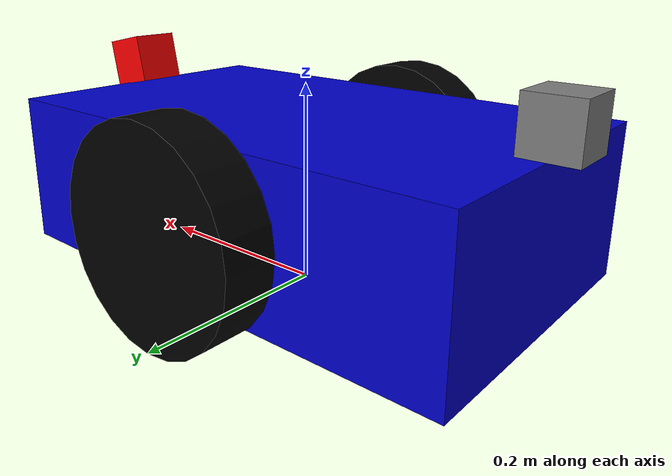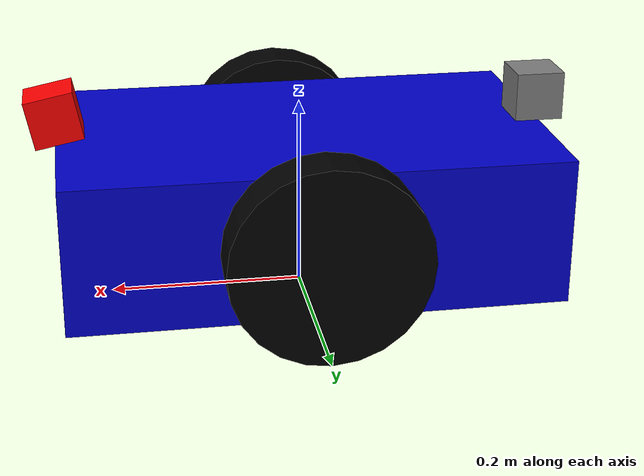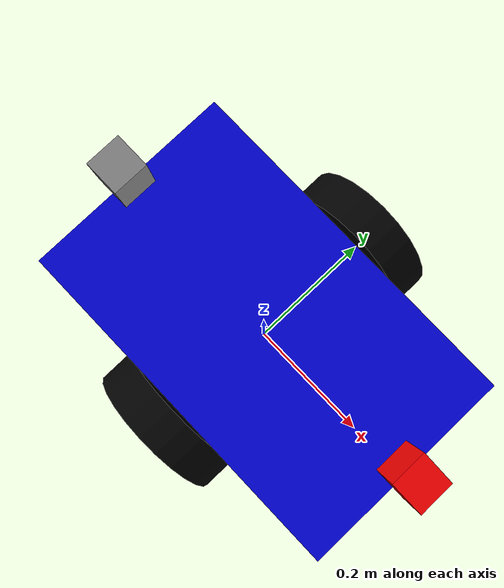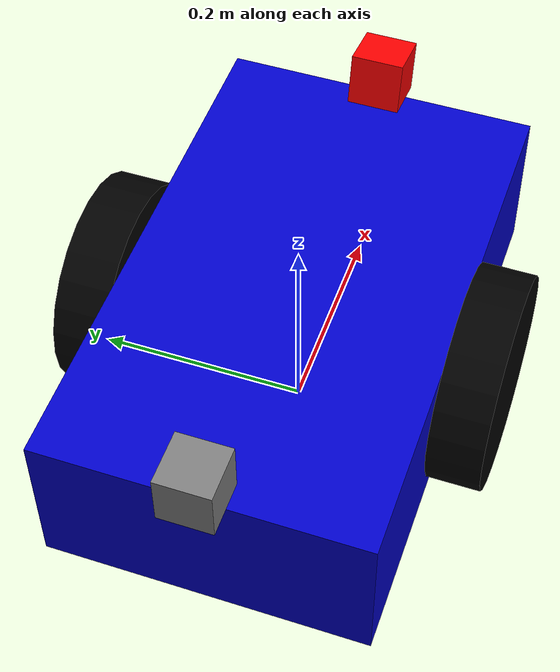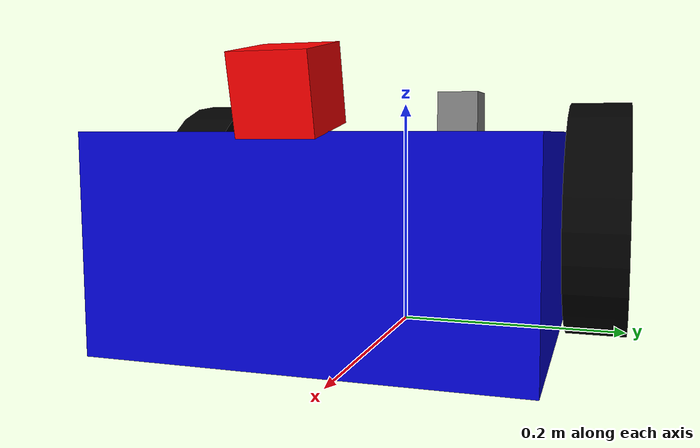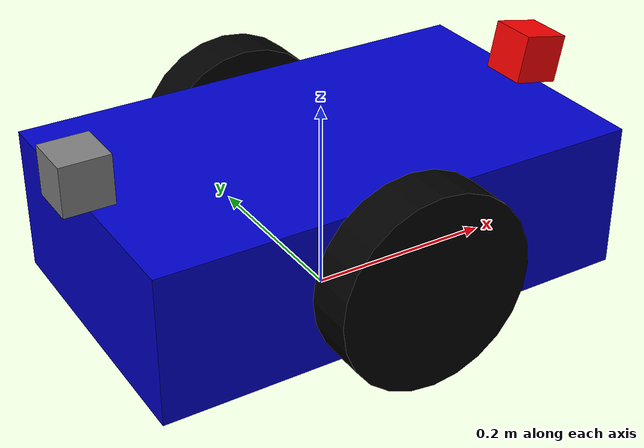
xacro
<?xml version="1.0"?>
<robot name="my_robot" xmlns:xacro="http://www.ros.org/wiki/xacro">

  <!-- Define constants -->
  <xacro:property name="chassis_length" value="0.5"/>
  <xacro:property name="chassis_width" value="0.3"/>
  <xacro:property name="chassis_height" value="0.15"/>
  <xacro:property name="wheel_radius" value="0.1"/>
  <xacro:property name="wheel_width" value="0.05"/>
  <xacro:property name="caster_radius" value="0.05"/>

  <!-- Base footprint (virtual link on ground) -->
  <link name="base_footprint"/>

  <!-- Base link (chassis) -->
  <link name="base_link">
    <visual>
      <geometry>
        <box size="${chassis_length} ${chassis_width} ${chassis_height}"/>
      </geometry>
      <material name="blue">
        <color rgba="0 0 0.8 1"/>
      </material>
    </visual>
    <collision>
      <geometry>
        <box size="${chassis_length} ${chassis_width} ${chassis_height}"/>
      </geometry>
    </collision>
    <inertial>
      <mass value="5.0"/>
      <origin xyz="0 0 0" rpy="0 0 0"/>
      <inertia ixx="0.0625" ixy="0.0" ixz="0.0" iyy="0.1104" iyz="0.0" izz="0.1354"/>
    </inertial>
  </link>

    <!-- Joint connecting base_footprint to base_link -->
  <joint name="base_footprint_to_base_link" type="fixed">
    <parent link="base_footprint"/>
    <child link="base_link"/>
    <origin xyz="0 0 ${wheel_radius}" rpy="0 0 0"/>
  </joint>

  <!-- Left Wheel -->
  <link name="left_wheel_link">
    <visual>
      <geometry>
        <cylinder radius="${wheel_radius}" length="${wheel_width}"/>
      </geometry>
      <material name="black">
        <color rgba="0 0 0 1"/>
      </material>
    </visual>
    <collision>
      <geometry>
        <cylinder radius="${wheel_radius}" length="${wheel_width}"/>
      </geometry>
    </collision>
    <inertial>
      <mass value="0.5"/>
      <inertia ixx="0.00104" ixy="0.0" ixz="0.0" iyy="0.00104" iyz="0.0" izz="0.00125"/>
    </inertial>
  </link>

  <joint name="left_wheel_joint" type="continuous">
    <parent link="base_link"/>
    <child link="left_wheel_link"/>
    <origin xyz="0 ${chassis_width/2 + wheel_width/2} 0" rpy="-1.5708 0 0"/>
    <axis xyz="0 0 1"/>
  </joint>

  <!-- Right Wheel -->
  <link name="right_wheel_link">
    <visual>
      <geometry>
        <cylinder radius="${wheel_radius}" length="${wheel_width}"/>
      </geometry>
      <material name="black">
        <color rgba="0 0 0 1"/>
      </material>
    </visual>
    <collision>
      <geometry>
        <cylinder radius="${wheel_radius}" length="${wheel_width}"/>
      </geometry>
    </collision>
    <inertial>
      <mass value="0.5"/>
      <inertia ixx="0.00104" ixy="0.0" ixz="0.0" iyy="0.00104" iyz="0.0" izz="0.00125"/>
    </inertial>
  </link>

  <joint name="right_wheel_joint" type="continuous">
    <parent link="base_link"/>
    <child link="right_wheel_link"/>
    <origin xyz="0 ${-chassis_width/2 - wheel_width/2} 0" rpy="-1.5708 0 0"/>
    <axis xyz="0 0 1"/>
  </joint>

  <!-- Caster Wheel -->

  <!-- Camera Link -->
  <link name="camera_link">
    <visual>
      <geometry>
        <box size="0.05 0.05 0.05"/>
      </geometry>
      <material name="red">
        <color rgba="1 0 0 1"/>
      </material>
    </visual>
    <collision>
      <geometry>
        <box size="0.05 0.05 0.05"/>
      </geometry>
    </collision>
    <inertial>
      <mass value="0.1"/>
      <origin xyz="0 0 0" rpy="0 0 0"/>
      <inertia ixx="0.00001" ixy="0.0" ixz="0.0" iyy="0.00001" iyz="0.0" izz="0.00001"/>
    </inertial>
  </link>

  <joint name="camera_joint" type="fixed">
    <parent link="base_link"/>
    <child link="camera_link"/>
    <origin xyz="${chassis_length/2} 0 ${chassis_height/2 + 0.025}" rpy="0 0.2 0"/>
  </joint>

  <!-- Counterweight link (balances camera mass) -->
  <link name="counterweight_link">
    <visual>
      <geometry>
        <box size="0.05 0.05 0.05"/>
      </geometry>
      <material name="grey">
        <color rgba="0.5 0.5 0.5 1"/>
      </material>
    </visual>
    <collision>
      <geometry>
        <box size="0.05 0.05 0.05"/>
      </geometry>
    </collision>
    <inertial>
      <mass value="0.1"/>
      <origin xyz="0 0 0" rpy="0 0 0"/>
      <inertia ixx="0.00001" ixy="0.0" ixz="0.0" iyy="0.00001" iyz="0.0" izz="0.00001"/>
    </inertial>
  </link>

  <joint name="counterweight_joint" type="fixed">
    <parent link="base_link"/>
    <child link="counterweight_link"/>
    <origin xyz="${-chassis_length/2} 0 ${chassis_height/2 + 0.025}" rpy="0 0 0"/>
  </joint>

  <!-- Gazebo Differential Drive Plugin -->
  <gazebo>
    <plugin filename="gz-sim-diff-drive-system" name="gz::sim::systems::DiffDrive">
      <left_joint>left_wheel_joint</left_joint>
      <right_joint>right_wheel_joint</right_joint>
      <wheel_separation>${chassis_width + wheel_width}</wheel_separation>
      <wheel_radius>${wheel_radius}</wheel_radius>
      <odom_publish_frequency>50</odom_publish_frequency>
      <topic>/cmd_vel</topic>          <!-- Listens to /cmd_vel for movement -->
      <odom_topic>/odom</odom_topic>   <!-- Publishes odometry messages -->
      <tf_topic>/tf</tf_topic>         <!-- Publishes the odom->base_footprint transform -->
      <frame_id>odom</frame_id>
      <child_frame_id>base_footprint</child_frame_id>
    </plugin>
  </gazebo>
  <gazebo>
    <plugin filename="gz-sim-joint-state-publisher-system" name="gz::sim::systems::JointStatePublisher">
      <topic>/joint_states</topic>
    </plugin>
  </gazebo> <!-- Gazebo Camera Sensor -->
  <gazebo reference="camera_link">
    <sensor name="camera" type="camera">
      <update_rate>30</update_rate>
      <camera>
        <horizontal_fov>1.047</horizontal_fov>
        <image>
          <width>640</width>
          <height>480</height>
          <format>R8G8B8</format>
        </image>
        <clip>
          <near>0.1</near>
          <far>100</far>
        </clip>
        <frame_name>camera_link</frame_name>
      </camera>
      <always_on>1</always_on>
      <update_rate>30</update_rate>
      <visualize>true</visualize>
      <topic>camera/image_raw</topic>
    </sensor>
  </gazebo>

  <!-- Gazebo colors -->
  <gazebo reference="base_link">
    <material>Gazebo/Blue</material>
  </gazebo>

  <gazebo reference="left_wheel_link">
    <material>Gazebo/Black</material>
  </gazebo>

  <gazebo reference="right_wheel_link">
    <material>Gazebo/Black</material>
  </gazebo>

  <gazebo reference="caster_link">
    <material>Gazebo/Grey</material>
    <mu1>0.0</mu1>
    <mu2>0.0</mu2>
  </gazebo>

  <gazebo reference="camera_link">
    <material>Gazebo/Red</material>
  </gazebo>

  <gazebo reference="counterweight_link">
    <material>Gazebo/Grey</material>
  </gazebo>

</robot>
